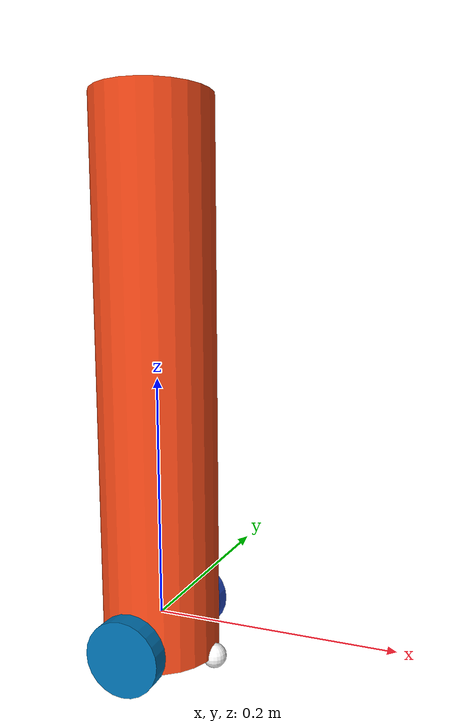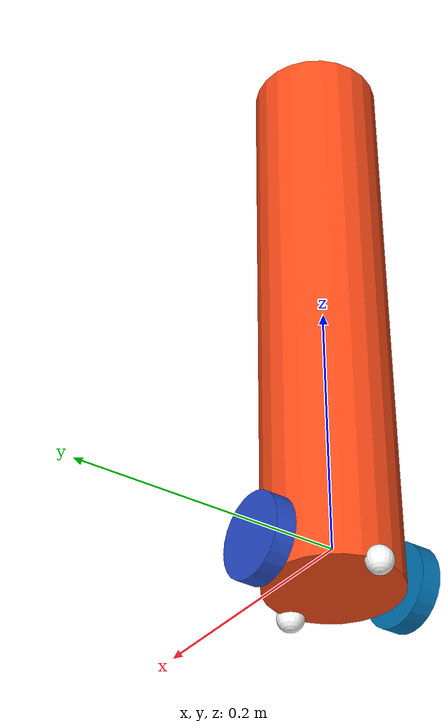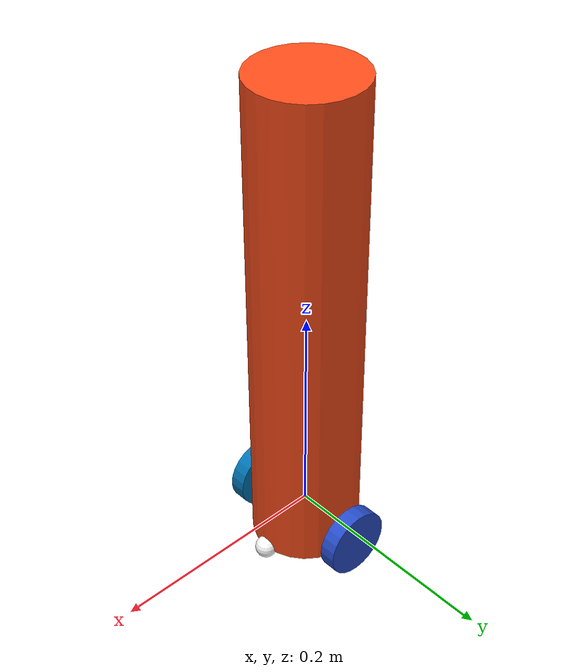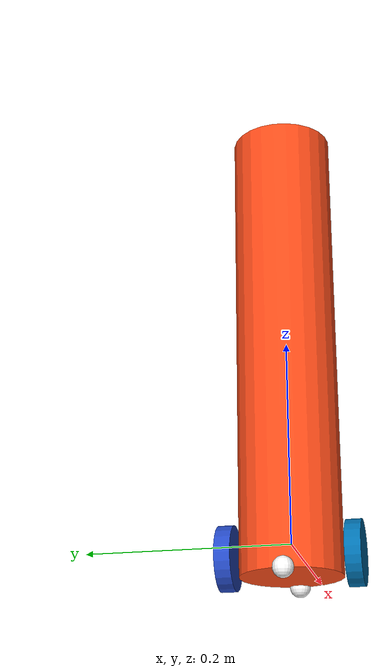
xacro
<?xml version="1.0"?>
<robot xmlns:xacro="http://ros.org/wiki/xacro">

    <xacro:include filename="inertial_macros.xacro"/>

    <xacro:property name="chassis_radius" value="0.049"/>
    <xacro:property name="chassis_height" value="0.453"/>

    <xacro:property name="wheel_radius" value="0.031"/>
    <xacro:property name="wheel_thickness" value="0.015"/>
    <xacro:property name="wheel_offset_y" value="0.06"/>
    <xacro:property name="wheel_offset_z" value="-0.011"/>
    <xacro:property name="wheel_offset_x" value="0.065"/>
    <xacro:property name="wheel_mass" value="0.03"/>

    <xacro:property name="caster_wheel_mass" value="0.01"/>
    <xacro:property name="caster_wheel_radius" value="0.01"/>
    <xacro:property name="caster_wheel_offset_x" value="0.049"/>
    <xacro:property name="caster_wheel_offset_z" value="${wheel_offset_z - wheel_radius + caster_wheel_radius}"/>

    <material name="white">
        <color rgba="1 1 1 1"/>
    </material>

    <material name="orange">
        <color rgba="1 0.3 0.1 1"/>
    </material>

    <material name="blue">
        <color rgba="0.2 0.2 1 1"/>
    </material>

    <material name="black">
        <color rgba="0 0 0 1"/>
    </material>

    <link name="base_link">
    </link>

    <link name="base_footprint">
    </link>

    <joint name="base_joint" type="fixed">
        <parent link="base_link"/>
        <child link="base_footprint"/>
        <origin xyz="0.0 0.0 0.0" rpy="0 0 0"/>
    </joint>

    <!--Chassis Link-->

    <joint name="chassis_joint" type="fixed">
        <parent link="base_link"/>
        <child link="chassis"/>
        <origin xyz="${-chassis_radius} 0 ${-wheel_radius}"/>
    </joint>

    <link name="chassis">
        <visual>
            <origin xyz="0.049 0 ${chassis_height/2}"/>
            <geometry>
                <cylinder radius="${chassis_radius}" length="${chassis_height}"/>
            </geometry>
            <material name="orange"/>
        </visual>

        <collision>
            <origin xyz="0.049 0 ${chassis_height/2}"/>
            <geometry>
                <cylinder radius="${chassis_radius}" length="${chassis_height}"/>
            </geometry>
        </collision>
        <xacro:inertial_cylinder mass="1.0" length="${chassis_height}" radius="${chassis_radius}">
            <origin xyz="0.049 0 ${chassis_height/2}" rpy="0 0 0"/>
        </xacro:inertial_cylinder>
    </link>

    <!--Left wheel link-->
    <joint name="left_wheel_joint" type="continuous">
        <parent link="base_link"/>
        <child link="left_wheel"/>
        <origin xyz="0 ${wheel_offset_y} ${wheel_offset_z}" rpy="-${pi/2} 0 0"/>
        <axis xyz="0 0 1"/>
    </joint>

    <link name="left_wheel">
        <visual>
            <geometry>
                <cylinder radius="${wheel_radius}" length="${wheel_thickness}"/>
                <material name="blue"/>
            </geometry>
        </visual>

        <collision>
            <geometry>
                <cylinder radius="${wheel_radius}" length="${wheel_thickness}"/>
            </geometry>
        </collision>

        <xacro:inertial_cylinder mass="${wheel_mass}" length="${wheel_thickness}" radius="${wheel_radius}">
            <origin xyz="0 0 0" rpy="0 0 0"/>
        </xacro:inertial_cylinder>
    </link>

    <gazebo reference="left_wheel">
        <material>Gazebo/Blue</material>
    </gazebo>

    <!--Right wheel link-->
    <joint name="right_wheel_joint" type="continuous">
        <parent link="base_link"/>
        <child link="right_wheel"/>
        <origin xyz="0 -${wheel_offset_y} ${wheel_offset_z}" rpy="${pi/2} 0 0"/>
        <axis xyz="0 0 -1"/>
    </joint>

    <link name="right_wheel">
        <visual>
            <geometry>
                <cylinder radius="${wheel_radius}" length="${wheel_thickness}"/>
                <material name="blue"/>
            </geometry>
        </visual>

        <collision>
            <geometry>
                <cylinder radius="${wheel_radius}" length="${wheel_thickness}"/>
            </geometry>
        </collision>

        <xacro:inertial_cylinder mass="${wheel_mass}" length="${wheel_thickness}" radius="${wheel_radius}">
            <origin xyz="0 0 0" rpy="0 0 0"/>
        </xacro:inertial_cylinder>
    </link>

    <!--Front Caster wheel joint-->
    <joint name="front_caster_wheel_joint" type="fixed">
        <parent link="chassis"/>
        <child link="front_caster_wheel"/>
        <origin xyz="0 0 0"/>
    </joint>

    <link name="front_caster_wheel">
        <visual>
            <geometry>
                <sphere radius="${caster_wheel_radius}"/>
            </geometry>
            <material name="white"/>
        </visual>

        <collision>
            <geometry>
                <sphere radius="${caster_wheel_radius}"/>
            </geometry>
        </collision>

        <xacro:inertial_sphere mass="${caster_wheel_mass}" radius="${caster_wheel_radius}">
            <origin xyz="0 0 0" rpy="0 0 0"/>
        </xacro:inertial_sphere>
    </link>

    <!--Back Caster wheel joint-->
    <joint name="back_caster_wheel_joint" type="fixed">
        <parent link="chassis"/>
        <child link="back_caster_wheel"/>
        <origin xyz="${(2*chassis_radius)} 0 0"/>
    </joint>

    <link name="back_caster_wheel">
        <visual>
            <geometry>
                <sphere radius="${caster_wheel_radius}"/>
            </geometry>
            <material name="white"/>
        </visual>

        <collision>
            <geometry>
                <sphere radius="${caster_wheel_radius}"/>
            </geometry>
        </collision>

        <xacro:inertial_sphere mass="${caster_wheel_mass}" radius="${caster_wheel_radius}">
            <origin xyz="0 0 0" rpy="0 0 0"/>
        </xacro:inertial_sphere>
    </link>

</robot>

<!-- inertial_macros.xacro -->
<robot xmlns:xacro="http://www.ros.org/wiki/xacro">

<xacro:macro name="inertial_sphere" params="mass radius *origin">
    <inertial>
        <xacro:insert_block name="origin"/>
        <mass value="${mass}"/>
        <inertia ixx="${(2/5) * mass * (radius*radius)}" ixy="0.0" ixz="0.0"
                iyy="${(2/5) * mass * (radius*radius)}" iyz="0.0"
                izz="${(2/5) * mass * (radius*radius)}"/>
    </inertial>
</xacro:macro>

<xacro:macro name="inertial_cylinder" params="mass length radius *origin">
    <inertial>
        <xacro:insert_block name="origin"/>
        <mass value="${mass}"/>
        <inertia ixx="${(1/12) * mass * (3*radius*radius + length*length)}" ixy="0.0" ixz="0.0"
                iyy="${(1/12) * mass * (3*radius*radius + length*length)}" iyz="0.0"
                izz="${(1/2) * mass * (radius*radius)}"/>
    </inertial>
</xacro:macro>

</robot>
